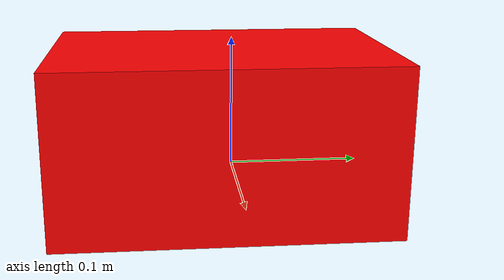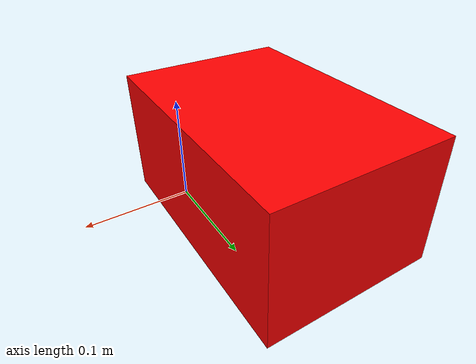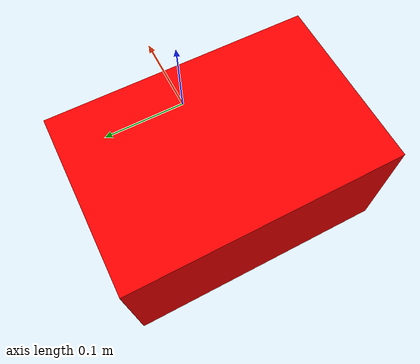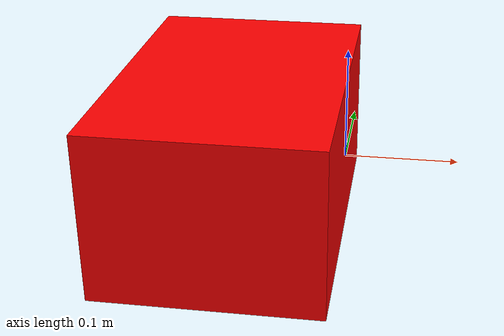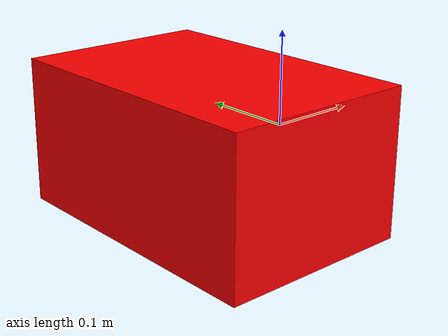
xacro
<?xml version="1.0"?>
<robot name="teste" xmlns:xacro="http://www.ros.org/wiki/xacro">
    <xacro:property name="tamanho_x" value="0.20" />
    <xacro:property name="tamanho_y" value="0.30" />
    <xacro:property name="tamanho_z" value="0.15" />

    <material name="blue">
      <color rgba="0 0 1 1"/>
    </material>

    <material name="black">
      <color rgba="0 0 0 1"/>
    </material>

    <material name="white">
      <color rgba="1 1 1 1"/>
    </material>

    <material name="red">
      <color rgba="1 0 0 1"/>
    </material>

    <!-- base link -->
    <link name="base_link">

    </link>

    <!-- corpo -->

    <joint name="corpo_joint" type="fixed">
      <origin xyz="-${tamanho_x/2} 0.0 0.0" rpy="0.0 0.0 0.0"/>
      <parent link="base_link"/>
      <child link="corpo_link"/>
    </joint>

    <link name="corpo_link">
        <visual>
          <geometry>
              <box size="${tamanho_x} ${tamanho_y} ${tamanho_z}"/>
          </geometry>
          <material name="red"/>
        </visual>
        <collision>
          <geometry>
              <box size="${tamanho_x} ${tamanho_y} ${tamanho_z}"/>
          </geometry>
        </collision>
    </link>

</robot>
